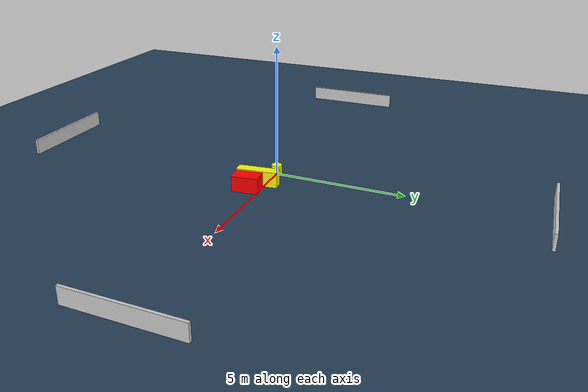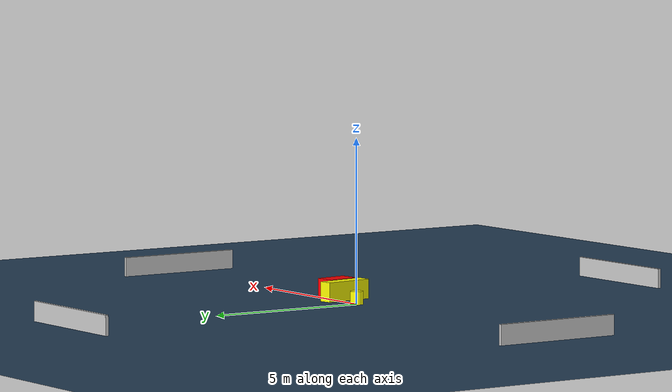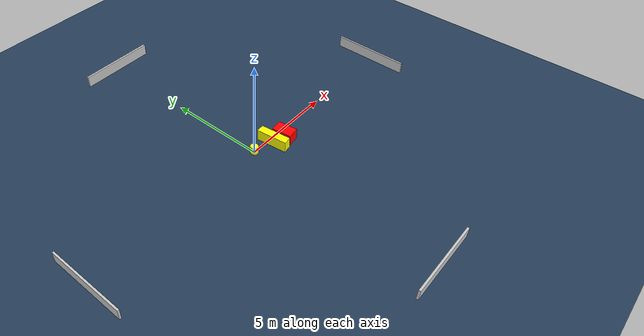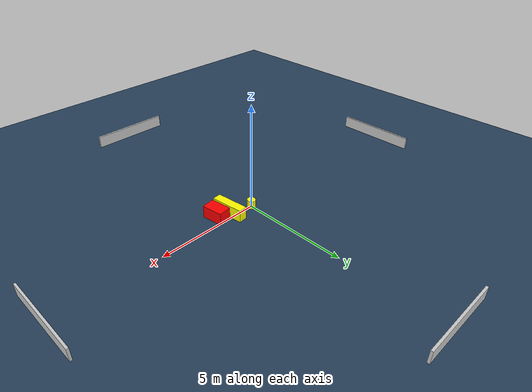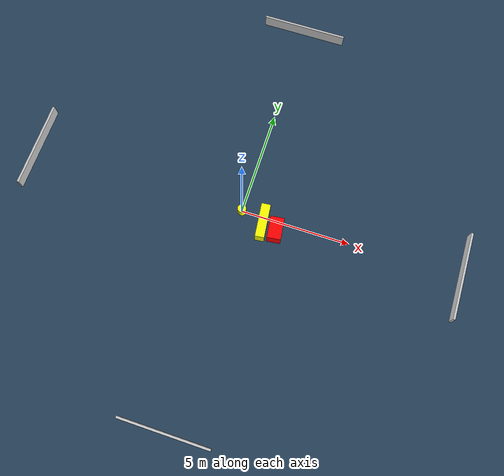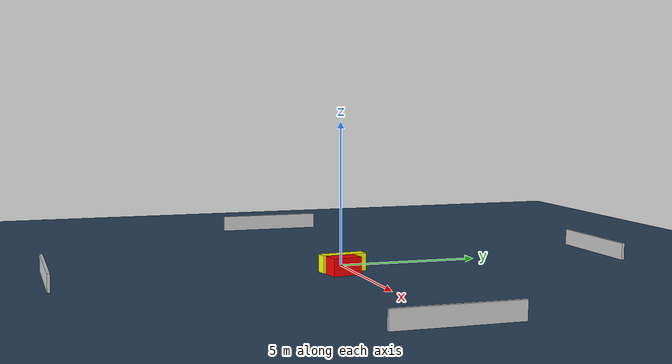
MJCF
<?xml version="1.0" ?>
<mujoco model="generated_environment">
  <option timestep="0.01" integrator="RK4" cone="elliptic"/>
  <default>
    <geom density="1"/>
  </default>
  <asset>
    <texture builtin="gradient" height="3072" name="skybox" rgb1="0.3 0.5 0.7" rgb2="0 0 0" type="skybox" width="512"/>
    <texture builtin="checker" height="300" name="groundplane" rgb1="0.2 0.3 0.4" rgb2="0.1 0.2 0.3" type="2d" width="300"/>
    <material name="groundplane" reflectance="0.2" texrepeat="5 5" texture="groundplane"/>
  </asset>
  <worldbody>
    <light dir="0 0 -1" directional="true" pos="0 0 1.5"/>
    <geom condim="3" friction="0.5 0.005 0.001" material="groundplane" name="floor" pos="0 0 0" size="0 0 0.05" type="plane"/>
    <body name="walls">
      <geom name="wall_1" condim="4" pos="-10.0 0.0 0.3" rgba="0.800000011920929 0.800000011920929 0.800000011920929 1.0" size="0.05 2.0 0.3" type="box"/>
      <geom name="wall_2" condim="4" pos="10.0 0.0 0.3" rgba="0.800000011920929 0.800000011920929 0.800000011920929 1.0" size="0.05 2.0 0.3" type="box"/>
      <geom name="wall_3" condim="4" pos="0.0 -10.0 0.3" rgba="0.800000011920929 0.800000011920929 0.800000011920929 1.0" size="2.0 0.05 0.3" type="box"/>
      <geom name="wall_4" condim="4" pos="0.0 10.0 0.3" rgba="0.800000011920929 0.800000011920929 0.800000011920929 1.0" size="2.0 0.05 0.3" type="box"/>
    </body>
    <body name="robot">
      <joint name="joint_x" type="slide" pos="0 0 0" axis="1 0 0"/>
      <joint name="joint_y" type="slide" pos="0 0 0" axis="0 1 0"/>
      <geom name="robot" type="cylinder" pos="0.0 0.0 0.2" size="0.2 0.2 0.0" mass="5.0" friction="1.0 0.005 0.0001" condim="4" rgba="1.0 1.0 0.0 1.0"/>
    </body>
    <body name="obstacle_1_movable">
      <geom name="obstacle_1_movable" condim="4" pos="1.072076815466424 -0.30315998613647943 0.3" euler="0 0 186.27003530718488" friction="0.0 0.005 0.001" rgba="1.0 1.0 0.0 1.0" size="0.20772704225751148 0.784697194802022 0.3" type="box" mass="0.1"/>
      <joint type="free"/>
    </body>
    <body name="obstacle_2_static">
      <geom name="obstacle_2_static" condim="4" pos="1.7120899625586437 -0.46487409686636105 0.3" euler="0 0 187.1679645947326" friction="0.0 0.005 0.001" rgba="1.0 0.0 0.0 1.0" size="0.3123201680845419 0.5056727860078724 0.3" type="box"/>
    </body>
  </worldbody>
  <actuator>
    <motor name="actuator_x" joint="joint_x" gear="1" ctrlrange="-1 1"/>
    <motor name="actuator_y" joint="joint_y" gear="1" ctrlrange="-1 1"/>
  </actuator>
</mujoco>
